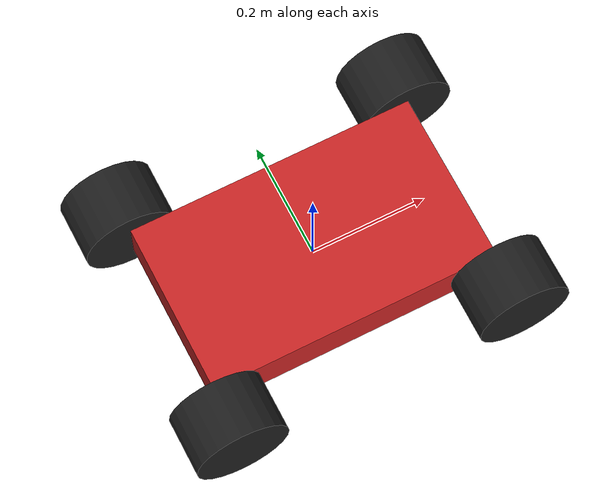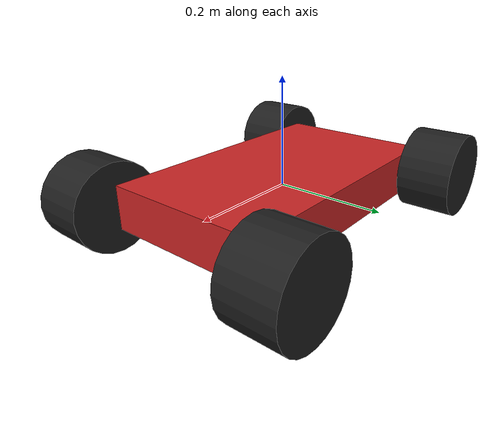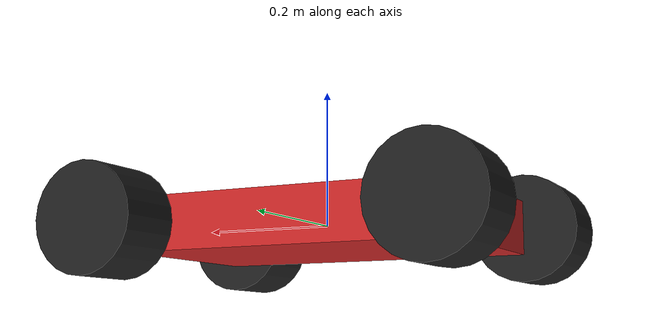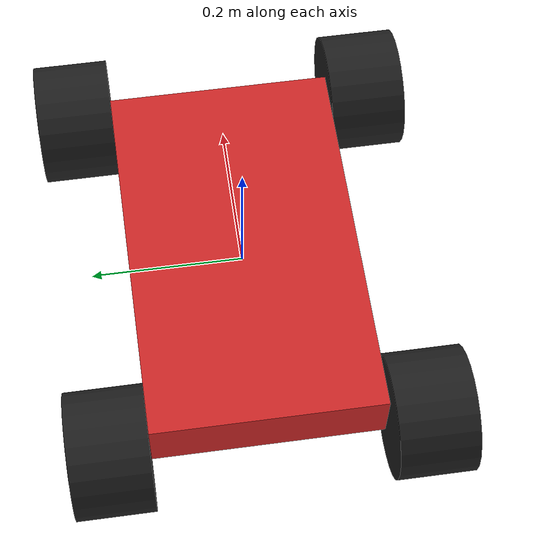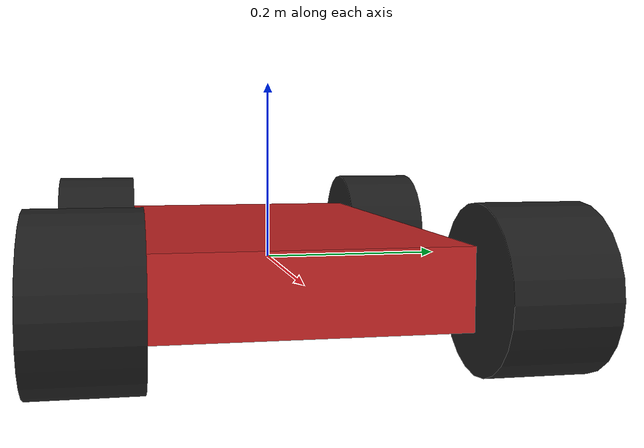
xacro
<?xml version="1.0"?>
<robot name="Robot_ackerman" xmlns:xacro="http://www.ros.org/wiki/xacro">

  <xacro:property name="wheel_radius" value="0.08"/>
  <xacro:property name="wheel_length" value="0.1"/>
  <xacro:property name="base_size" value="0.5 0.3 0.08"/>
  <xacro:property name="pi" value="3.14159265359"/>
  <xacro:property name="wheel_mass" value="5.0"/>
  <xacro:property name="turn_radius" value="0.05"/>

  <xacro:macro name="cylinder_inertia" params="m r h">
    <inertia ixx="${m*(3*r*r+h*h)/12}" ixy="0.0" ixz="0.0"
             iyy="${m*(3*r*r+h*h)/12}" iyz="0.0" izz="${m*r*r/2}"/>
  </xacro:macro>

  <xacro:macro name="wheel" params="prefix suffix">
    <link name="${prefix}_${suffix}_wheel">
      <visual>
        <geometry>
          <cylinder radius="${wheel_radius}" length="${wheel_length}"/>
        </geometry>
        <material name="black"/>
      </visual>
      <collision>
        <geometry>
          <cylinder radius="${wheel_radius}" length="${wheel_length}"/>
        </geometry>
      </collision>
      <inertial>
        <mass value="${wheel_mass}"/>
        <xacro:cylinder_inertia m="${wheel_mass}" r="${wheel_radius}" h="${wheel_length}"/>
      </inertial>
    </link>
  </xacro:macro>

  <xacro:macro name="wheel_turn" params="prefix">
    <link name="${prefix}_front_wheel_turn">
      <visual>
        <geometry>
          <cylinder length="0.04" radius="${turn_radius}"/>
        </geometry>
        <material name="green"/>
      </visual>
      <collision>
        <geometry>
          <cylinder length="0.04" radius="${turn_radius}"/>
        </geometry>
      </collision>
      <inertial>
        <mass value="1.0"/>
        <inertia ixx="0.000677" ixy="0" ixz="0" iyy="0.000677" iyz="0" izz="0.00125"/>
      </inertial>
    </link>
  </xacro:macro>

  <link name="base_link">
    <visual>
      <geometry>
        <box size="${base_size}"/>
      </geometry>
      <material name="red"/>
    </visual>
    <collision>
      <geometry>
        <box size="${base_size}"/>
      </geometry>
    </collision>
    <inertial>
      <mass value="10.0"/>
      <inertia ixx="0.025" ixy="0.0" ixz="0.0" iyy="0.025" iyz="0.0" izz="0.01"/>
    </inertial>
  </link>

  <xacro:wheel prefix="right" suffix="rear"/>
  <xacro:wheel prefix="left" suffix="rear"/>
  <xacro:wheel prefix="right" suffix="front"/>
  <xacro:wheel prefix="left" suffix="front"/>
  <xacro:wheel_turn prefix="right"/>
  <xacro:wheel_turn prefix="left"/>
  <joint name="right_rear_wheel_joint" type="continuous">
    <parent link="base_link"/>
    <child link="right_rear_wheel"/>
    <origin xyz="0.25 0.20 0" rpy="1.57 0.0 0.0"/>
    <axis xyz="0.0 0.0 1.0"/>
  </joint>

  <joint name="left_rear_wheel_joint" type="continuous">
    <parent link="base_link"/>
    <child link="left_rear_wheel"/>
    <origin xyz="0.25 -0.20 0.0" rpy="1.57 0.0 0.0"/>
    <axis xyz="0.0 0.0 1.0"/>
  </joint>

  <joint name="right_front_wheel_joint" type="continuous">
    <parent link="right_front_wheel_turn"/>
    <child link="right_front_wheel"/>
    <origin xyz="0 0 0" rpy="0.0 0.0 0.0"/>
    <axis xyz="0.0 0.0 1"/>
  </joint>

  <joint name="left_front_wheel_joint" type="continuous">
    <parent link="left_front_wheel_turn"/>
    <child link="left_front_wheel"/>
    <origin xyz="0 0 0" rpy="0.0 0.0 0.0"/>
    <axis xyz="0.0 0.0 1"/>
  </joint>

  <joint name="right_steering_joint" type="revolute">
    <parent link="base_link"/>
    <child link="right_front_wheel_turn"/>
    <origin xyz="-0.25 0.20 0.0" rpy="1.57 0.0 0.0"/>
    <axis xyz="0.0 1.0 0.0"/>
    <limit lower="-0.6" upper="0.6" effort="100" velocity="0.5"/>
  </joint>

  <joint name="left_steering_joint" type="revolute">
    <parent link="base_link"/>
    <child link="left_front_wheel_turn"/>
    <origin xyz="-0.25 -0.20 0.0" rpy="1.57 0.0 0.0"/>
    <axis xyz="0.0 1.0 0.0"/>
    <limit lower="-0.6" upper="0.6" effort="100" velocity="0.5"/>
  </joint>

  <gazebo>
    <plugin name="ackermann_drive_controller" filename="libgazebo_ros_ackermann_drive.so">
      <ros>
        <namespace>/</namespace>
      </ros>

      <left_front_joint>left_steering_joint</left_front_joint>
      <right_front_joint>right_steering_joint</right_front_joint>

      <left_rear_joint>left_rear_wheel_joint</left_rear_joint>
      <right_rear_joint>right_rear_wheel_joint</right_rear_joint>

      <wheelbase>0.5</wheelbase>
      <track>0.4</track>
      <max_steer>0.6</max_steer>
      <max_speed>1.0</max_speed>

      <command_topic>/cmd_vel</command_topic>
    </plugin>
  </gazebo>
</robot>
